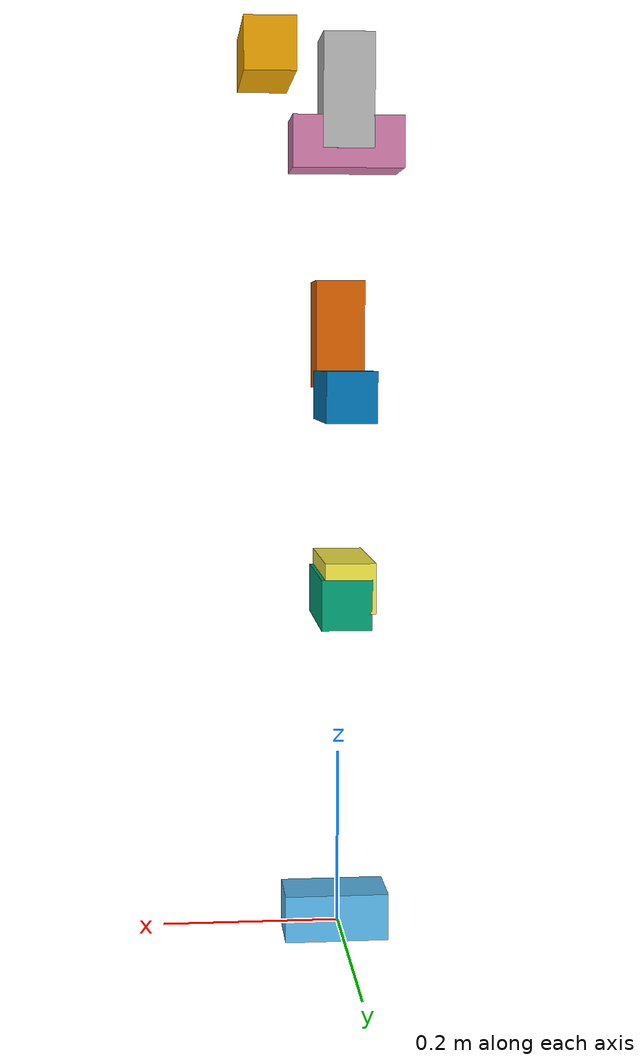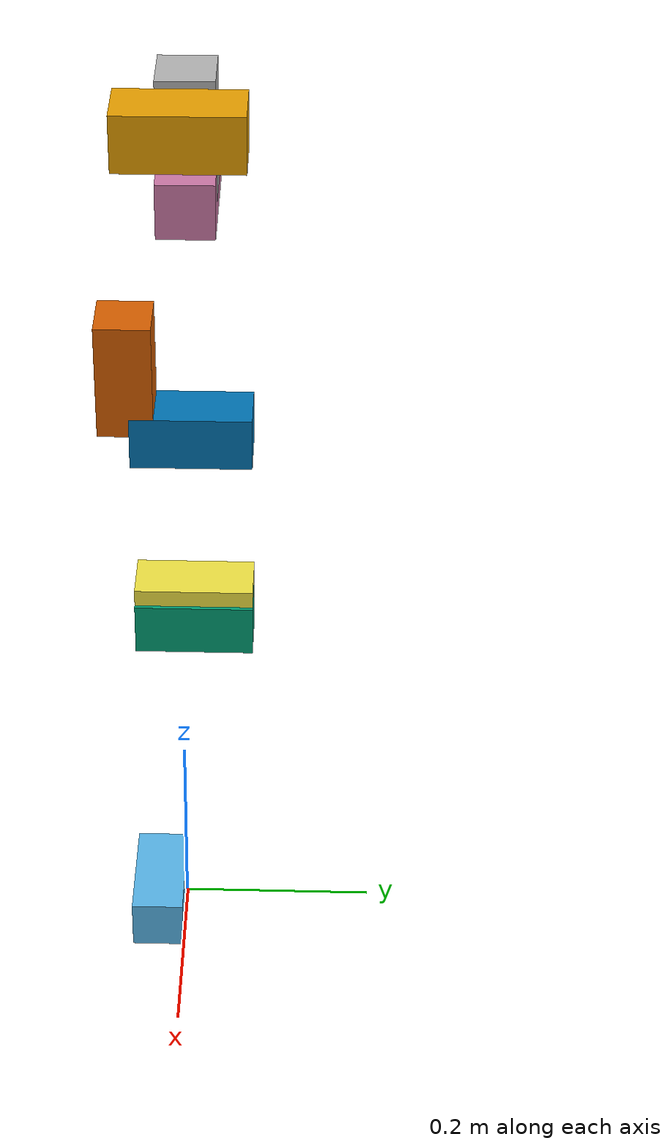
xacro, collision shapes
<?xml version="1.0"?>
<robot xmlns:xacro="http://www.ros.org/wiki/xacro"  name="robot">

    <!-- This is an example of a URDF. -->
    <!-- As we move through the file, new things to note will be pointed out. -->
    <!-- It's not meant an example of GOOD design, but an example of some of the various features of URDF/xacro. -->

    <!-- This will include all the contents of example_include.xacro first. Go check it out! -->
    <xacro:include filename="example_include.xacro" />
    <xacro:include filename="example_gazebo.xacro" />

    <link name="world"/>
    <joint name="fixed_base" type="fixed" disable_fixed_joint_lumping="true">
        <origin rpy="1.57 0 -1.57" xyz="0 -0.03 0"/>
        <parent link="world"/>
        <child link="base_link"/>
    </joint>

    <link name="base_link">
        <visual>
            <geometry>
                <mesh filename="package://mani_urdf/description/mesh/link1.stl" scale="0.001 0.001 0.001"/>
            </geometry>
        </visual>

        <collision>
            <geometry>
                <box size="0.055 0.055 0.12" />

            </geometry>
        </collision>

        <inertial>
            <mass value="0.001"/>
            <inertia ixx="0.01" ixy="0.0" ixz="0.0"
                    iyy="0.01" iyz="0.0"
                    izz="0.01"/>
        </inertial>
    </link>

    <link name="link1">
        <visual>
            <geometry>
                <mesh filename="package://mani_urdf/description/mesh/link2.stl" scale="0.001 0.001 0.001"/>
            </geometry>
        </visual>

        <collision>
            <geometry>
                <box size="0.055 0.055 0.12" />

            </geometry>
        </collision>

        <inertial>
            <mass value="0.001"/>
            <inertia ixx="0.01" ixy="0.0" ixz="0.0"
                    iyy="0.01" iyz="0.0"
                    izz="0.01"/>
        </inertial>
    </link>

    <link name="link2">
        <visual>
            <geometry>
                <mesh filename="package://mani_urdf/description/mesh/link3.stl" scale="0.001 0.001 0.001"/>
            </geometry>
        </visual>

        <collision>
            <geometry>
                <box size="0.055 0.055 0.12" />

            </geometry>
        </collision>

        <inertial>
            <mass value="0.001"/>
            <inertia ixx="0.01" ixy="0.0" ixz="0.0"
                    iyy="0.01" iyz="0.0"
                    izz="0.01"/>
        </inertial>
    </link>

    <link name="link3">
        <visual>
            <geometry>
                <mesh filename="package://mani_urdf/description/mesh/link4.stl" scale="0.001 0.001 0.001"/>
            </geometry>
        </visual>

        <collision>
            <geometry>
                <box size="0.055 0.055 0.12" />

            </geometry>
        </collision>

        <inertial>
            <mass value="0.001"/>
            <inertia ixx="0.01" ixy="0.0" ixz="0.0"
                    iyy="0.01" iyz="0.0"
                    izz="0.01"/>
        </inertial>
    </link>

    <link name="link4">
        <visual>
            <geometry>
                <mesh filename="package://mani_urdf/description/mesh/link5.stl" scale="0.001 0.001 0.001"/>
            </geometry>
        </visual>

        <collision>
            <geometry>
                <box size="0.055 0.055 0.12" />

            </geometry>
        </collision>

        <inertial>
            <mass value="0.001"/>
            <inertia ixx="0.01" ixy="0.0" ixz="0.0"
                    iyy="0.01" iyz="0.0"
                    izz="0.01"/>
        </inertial>
    </link>

    <link name="link5">
        <visual>
            <geometry>
                <mesh filename="package://mani_urdf/description/mesh/link6.stl" scale="0.001 0.001 0.001"/>
            </geometry>
        </visual>

        <collision>
            <geometry>
                <box size="0.055 0.055 0.12" />

            </geometry>
        </collision>

        <inertial>
            <mass value="0.001"/>
            <inertia ixx="0.01" ixy="0.0" ixz="0.0"
                    iyy="0.01" iyz="0.0"
                    izz="0.01"/>
        </inertial>
    </link>

    <link name="link6">
        <visual>
            <geometry>
                <mesh filename="package://mani_urdf/description/mesh/link7.stl" scale="0.001 0.001 0.001"/>
            </geometry>
        </visual>

        <collision>
            <geometry>
                <box size="0.055 0.055 0.12" />

            </geometry>
        </collision>

        <inertial>
            <mass value="0.001"/>
            <inertia ixx="0.01" ixy="0.0" ixz="0.0"
                    iyy="0.01" iyz="0.0"
                    izz="0.01"/>
        </inertial>
    </link>

    <link name="link7">
        <visual>
            <geometry>
                <mesh filename="package://mani_urdf/description/mesh/endeffector.stl" scale="0.001 0.001 0.001"/>
            </geometry>
        </visual>

        <collision>
            <geometry>
                <box size="0.055 0.055 0.12" />

            </geometry>
        </collision>

        <inertial>
            <mass value="0.001"/>
            <inertia ixx="0.01" ixy="0.0" ixz="0.0"
                    iyy="0.01" iyz="0.0"
                    izz="0.01"/>
        </inertial>
    </link>

    <joint name="joint1" type="revolute">
        <parent link="base_link"/>
        <child link="link1"/>
        <origin xyz="-0.044 0.383 -0.001" rpy="0 1.57 0"/>
        <axis xyz="0 1 0" />
        <limit effort="1000.0" velocity="0.1" lower="-1.57" upper="1.57" />
        <dynamics damping="100" friction="50" />
    </joint>

    <joint name="joint2" type="revolute">
        <parent link="link1"/>
        <child link="link2"/>
        <origin xyz="-0.004 0.018 0" rpy="0 0 0"/>
        <axis xyz="0 0 1" />
        <limit effort="1000.0" velocity="0.1" lower="-1.57" upper="1.57" />
        <dynamics damping="100" friction="50" />
    </joint>

    <joint name="joint3" type="revolute">
        <parent link="link2"/>
        <child link="link3"/>
        <origin xyz="0 0.205 0" rpy="0 3.14 3.14"/>
        <axis xyz="0 1 0" />
        <limit effort="1000.0" velocity="0.1" lower="-1.57" upper="1.57" />
        <dynamics damping="100" friction="50" />
    </joint>

    <joint name="joint4" type="revolute">
        <parent link="link3"/>
        <child link="link4"/>
        <origin xyz="0 -0.068 -0.0635" rpy="-1.57 0 0"/>
        <axis xyz="0 1 0" />
        <limit effort="1000.0" velocity="0.1" lower="-1.57" upper="1.57" />
        <dynamics damping="100" friction="50" />
    </joint>

    <joint name="joint5" type="revolute">
        <parent link="link4"/>
        <child link="link5"/>
        <origin xyz="0 -0.0645 -0.202" rpy="1.57 0 1.57"/>
        <axis xyz="0 1 0" />
        <limit effort="1000.0" velocity="0.1" lower="-1.57" upper="1.57" />
        <dynamics damping="100" friction="50" />
    </joint>

    <joint name="joint6" type="revolute">
        <parent link="link5"/>
        <child link="link6"/>
        <origin xyz="0 -0.053 0" rpy="1.57 1.57 0"/>
        <axis xyz="0 1 0" />
        <limit effort="1000.0" velocity="0.1" lower="-1.57" upper="1.57" />
        <dynamics damping="100" friction="50" />
    </joint>

    <joint name="joint7" type="revolute">
        <parent link="link6"/>
        <child link="link7"/>
        <origin xyz="-0.086 0.002 0.04" rpy="-1.57 0 3.14"/>
        <axis xyz="0 1 0" />
        <limit effort="1000.0" velocity="0.1" lower="-1.57" upper="1.57" />
        <dynamics damping="100" friction="50" />
    </joint>

</robot>

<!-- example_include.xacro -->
<robot xmlns:xacro="http://www.ros.org/wiki/xacro" >

    <!-- This file is not a robot in and of itself, it just contains some useful tags that could be included in any robot -->

    <!-- Specify some colours -->

    <material name="white">
        <color rgba="1 1 1 1"/>
    </material>

    <material name="orange">
        <color rgba="1 0.3 0.1 1"/>
    </material>

    <material name="blue">
        <color rgba="0.2 0.2 1 1"/>
    </material>

    <xacro:macro name="inertial_sphere" params="mass radius *origin">
        <inertial>
            <xacro:insert_block name="origin"/>
            <mass value="${mass}" />
            <inertia ixx="${(2/5) * mass * (radius*radius)}" ixy="0.0" ixz="0.0"
                    iyy="${(2/5) * mass * (radius*radius)}" iyz="0.0"
                    izz="${(2/5) * mass * (radius*radius)}" />
        </inertial>
    </xacro:macro>

    <xacro:macro name="inertial_box" params="mass x y z *origin">
        <inertial>
            <xacro:insert_block name="origin"/>
            <mass value="${mass}" />
            <inertia ixx="${(1/12) * mass * (y*y+z*z)}" ixy="0.0" ixz="0.0"
                    iyy="${(1/12) * mass * (x*x+z*z)}" iyz="0.0"
                    izz="${(1/12) * mass * (x*x+y*y)}" />
        </inertial>
    </xacro:macro>

    <xacro:macro name="inertial_cylinder" params="mass length radius *origin">
        <inertial>
            <xacro:insert_block name="origin"/>
            <mass value="${mass}" />
            <inertia ixx="${(1/12) * mass * (3*radius*radius + length*length)}" ixy="0.0" ixz="0.0"
                    iyy="${(1/12) * mass * (3*radius*radius + length*length)}" iyz="0.0"
                    izz="${(1/2) * mass * (radius*radius)}" />
        </inertial>
    </xacro:macro>

</robot>
